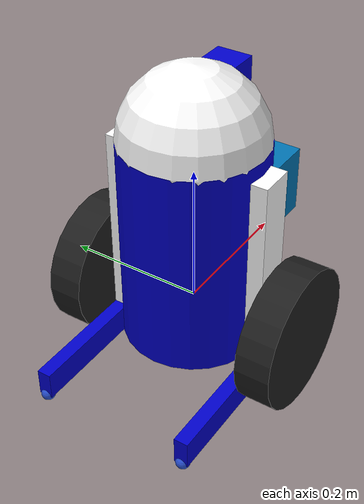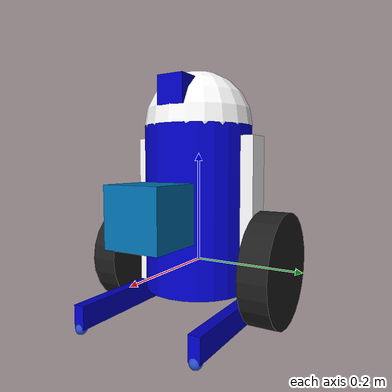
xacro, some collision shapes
<?xml version='1.0'?>

<robot name="r2d2_bot" xmlns:xacro="http://www.ros.org/wiki/xacro">

  <xacro:include filename="$(find slam_project)/urdf/r2d2_bot.gazebo" />

  <material name="blue">
    <color rgba="0 0 0.8 1"/>
  </material>
  <material name="white">
    <color rgba="1 1 1 1"/>
  </material>
  <material name="black">
    <color rgba="0 0 0 1"/>
  </material>

  <link name="robot_footprint"></link>

  <joint name="robot_footprint_joint" type="fixed">
    <origin xyz="0 0 0" rpy="0 0 0" />
    <parent link="robot_footprint"/>
    <child link="chassis" />
  </joint>

  <link name='chassis'>
    <pose>0 0 0.1 0 0 0</pose>

    <inertial>
      <mass value="15.0"/>
      <origin xyz="0.0 0 0" rpy=" 0 0 0"/>
      <inertia
          ixx="0.1" ixy="0" ixz="0"
          iyy="0.1" iyz="0"
          izz="0.1"
      />
    </inertial>

    <collision name='collision'>
      <origin xyz="0 0 0.1" rpy=" 0 0 0"/>
      <geometry>
        <cylinder radius="0.1" length="0.3"/>
      </geometry>
    </collision>
    <visual name='chassis_visual'>
      <origin xyz="0 0 0.1" rpy=" 0 0 0"/>
      <geometry>
        <cylinder radius="0.1" length="0.3"/>
      </geometry>
      <material name="blue"/>
    </visual>

    <collision name='collision'>
      <origin xyz="0 0.11 -0.07" rpy=" 0 0 0"/>
      <geometry>
        <box size="0.4 0.02 0.04"/>
      </geometry>
    </collision>
    <visual name='chassis_visual'>
      <origin xyz="0 0.11 -0.07" rpy=" 0 0 0"/>
      <geometry>
        <box size="0.4 0.02 0.04"/>
      </geometry>
      <material name="blue"/>
    </visual>

    <collision name='collision'>
      <origin xyz="0 -0.11 -0.07" rpy=" 0 0 0"/>
      <geometry>
        <box size="0.4 0.02 0.04"/>
      </geometry>
    </collision>
    <visual name='chassis_visual'>
      <origin xyz="0 -0.11 -0.07" rpy=" 0 0 0"/>
      <geometry>
        <box size="0.4 0.02 0.04"/>
      </geometry>
      <material name="blue"/>
    </visual>

    <collision name='fl_caster_collision'>
      <origin xyz="0.195 0.11 -0.09" rpy=" 0 0 0"/>
      <geometry>
        <sphere radius="0.0099"/>
      </geometry>
    </collision>
    <visual name='fl_caster_visual'>
      <origin xyz="0.195 0.11 -0.09" rpy=" 0 0 0"/>
      <geometry>
        <sphere radius="0.0099"/>
      </geometry>
    </visual>

    <collision name='bl_caster_collision'>
      <origin xyz="-0.195 0.11 -0.09" rpy=" 0 0 0"/>
      <geometry>
        <sphere radius="0.0099"/>
      </geometry>
    </collision>
    <visual name='bl_caster_visual'>
      <origin xyz="-0.195 0.11 -0.09" rpy=" 0 0 0"/>
      <geometry>
        <sphere radius="0.0099"/>
      </geometry>
    </visual>

    <collision name='fr_caster_collision'>
      <origin xyz="0.195 -0.11 -0.09" rpy=" 0 0 0"/>
      <geometry>
        <sphere radius="0.0099"/>
      </geometry>
    </collision>
    <visual name='fr_caster_visual'>
      <origin xyz="0.195 -0.11 -0.09" rpy=" 0 0 0"/>
      <geometry>
        <sphere radius="0.0099"/>
      </geometry>
    </visual>

    <collision name='br_caster_collision'>
      <origin xyz="-0.195 -0.11 -0.09" rpy=" 0 0 0"/>
      <geometry>
        <sphere radius="0.0099"/>
      </geometry>
    </collision>
    <visual name='br_caster_visual'>
      <origin xyz="-0.195 -0.11 -0.09" rpy=" 0 0 0"/>
      <geometry>
        <sphere radius="0.0099"/>
      </geometry>
    </visual>

    <collision name='head_colision'>
      <origin xyz="0 0 0.25" rpy=" 0 0 0"/>
      <geometry>
        <sphere radius="0.1"/>
      </geometry>
    </collision>
    <visual name='head_visual'>
      <origin xyz="0 0 0.25" rpy=" 0 0 0"/>
      <geometry>
        <sphere radius="0.1"/>
      </geometry>
      <material name="white"/>
    </visual>

    <collision name='arms_colision'>
      <origin xyz="0 0 0.09" rpy=" 0 0 0"/>
      <geometry>
        <box size="0.05 0.24 0.28"/>
      </geometry>
    </collision>
    <visual name='arms_visual'>
      <origin xyz="0 0 0.09" rpy=" 0 0 0"/>
      <geometry>
        <box size="0.05 0.24 0.28"/>
      </geometry>
      <material name="white"/>
    </visual>

    <collision name='holder_colision'>
      <origin xyz="0.125 0 0.06" rpy=" 0 0 0"/>
      <geometry>
        <box size="0.1 0.05 0.01"/>
      </geometry>
    </collision>
    <visual name='holder_visual'>
      <origin xyz="0.125 0 0.06" rpy=" 0 0 0"/>
      <geometry>
        <box size="0.1 0.05 0.01"/>
      </geometry>
    </visual>

  </link>

  <!-- Left wheel -->
  <link name='left_wheel'>
    <inertial>
      <mass value="5"/>
      <origin xyz="0 0 0" rpy="1.5707 0 0"/>
      <inertia ixx="0.1" ixy="0" ixz="0" iyy="0.1" iyz="0" izz="0.1"/>
    </inertial>

    <collision name='left_wheel_collision'>
      <origin xyz="0 0 0" rpy="1.5707 0 0"/>
      <geometry>
        <cylinder radius="0.1" length="0.05"/>
      </geometry>
    </collision>

    <visual name='left_wheel_visual'>
      <origin xyz="0 0 0" rpy="1.5707 0 0"/>
      <geometry>
        <cylinder radius="0.1" length="0.05"/>
      </geometry>
    </visual>
  </link>
  <joint type="continuous" name="left_wheel_hinge">
    <origin xyz="0 0.15 0" rpy="0 0 0"/>
    <child link="left_wheel"/>
    <parent link="chassis"/>
    <axis xyz="0 1 0" rpy="0 0 0"/>
    <limit effort="10000" velocity="1000"/>
    <dynamics damping="1.0" friction="1.0"/>
  </joint>

  <!-- Right wheel -->
  <link name='right_wheel'>
    <inertial>
      <mass value="5"/>
      <origin xyz="0.0 0 0" rpy="0 1.5707 1.5707"/>
      <inertia ixx="0.1" ixy="0" ixz="0" iyy="0.1" iyz="0" izz="0.1"/>
    </inertial>

    <collision name='right_wheel_collision'>
      <origin xyz="0.0 0 0" rpy="0 1.5707 1.5707"/>
      <geometry>
        <cylinder radius="0.1" length="0.05"/>
      </geometry>
    </collision>

    <visual name='right_wheel_visual'>
      <origin xyz="0.0 0 0" rpy="0 1.5707 1.5707"/>
      <geometry>
        <cylinder radius="0.1" length="0.05"/>
      </geometry>
    </visual>
  </link>
  <joint type="continuous" name="right_wheel_hinge">
    <origin xyz="0 -0.15 0" rpy="0 0 0"/>
    <child link="right_wheel"/>
    <parent link="chassis"/>
    <axis xyz="0 1 0" rpy="0 0 0"/>
    <limit effort="10000" velocity="1000"/>
    <dynamics damping="1.0" friction="1.0"/>
  </joint>

  <!-- Laser Rangeifnder -->
  <link name='hokuyo'>
    <inertial>
      <mass value="0.1"/>
      <origin xyz="0 0 0" rpy="0 0 0"/>
      <inertia ixx="1e-6" ixy="0" ixz="0" iyy="1e-6" iyz="0" izz="1e-6"/>
    </inertial>

    <collision name='hokuyo_collision'>
      <origin xyz="0 0 0" rpy="0 0 0"/>
      <geometry>
        <box size="0.1 0.1 0.1"/>
      </geometry>
    </collision>

    <visual name='hokuyo_visual'>
      <origin xyz="0 0 0" rpy="0 0 0"/>
      <geometry>
        <mesh filename="package://slam_project/meshes/hokuyo.dae"/>
      </geometry>
    </visual>
  </link>
  <joint type="fixed" name="hokuyo_joint">
    <origin xyz="0.15 0 0.1" rpy="0 0 0"/>
    <child link="hokuyo"/>
    <parent link="chassis"/>
  </joint>

  <!-- Camera Sensor -->
  <link name='camera'>
    <inertial>
      <mass value="0.1"/>
      <origin xyz="0 0 0" rpy="0 0 0"/>
      <inertia ixx="1e-6" ixy="0" ixz="0" iyy="1e-6" iyz="0" izz="1e-6"/>
    </inertial>

    <collision name='camera_collision'>
      <origin xyz="0 0 0" rpy="0 0 0"/>
      <geometry>
        <box size="0.05 0.05 0.05"/>
      </geometry>
    </collision>

    <visual name='camera_visual'>
      <origin xyz="0 0 0" rpy="0 0 0"/>
      <geometry>
        <box size="0.05 0.05 0.05"/>
      </geometry>
      <material name="blue"/>
    </visual>
  </link>
  <joint type="fixed" name="camera_joint">
    <origin xyz="0.07 0 0.305" rpy="0 0 0"/>
    <child link="camera"/>
    <parent link="chassis"/>
  </joint>

  <link name="camera_rgbd_frame"></link>
  <joint name="camera_rgbd_joint" type="fixed">
    <origin xyz="0 0 0" rpy="-${pi/2} 0 -${pi/2}"/>
    <parent link="camera"/>
    <child link="camera_rgbd_frame"/>
  </joint>

</robot>
